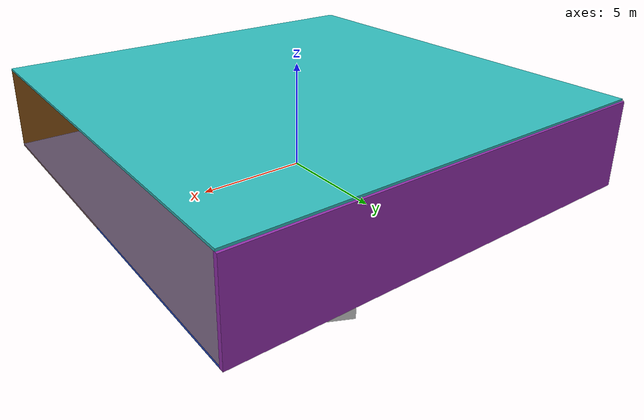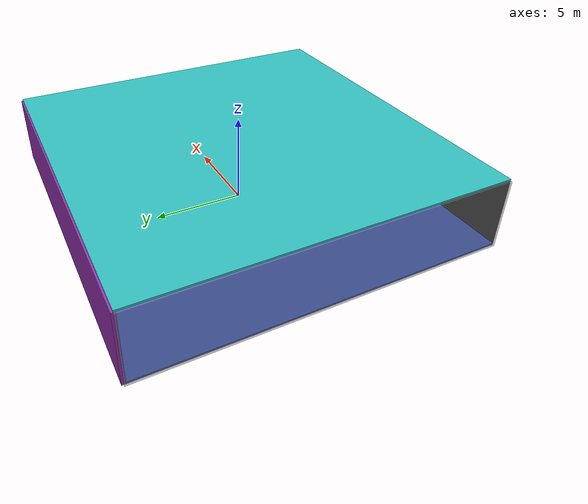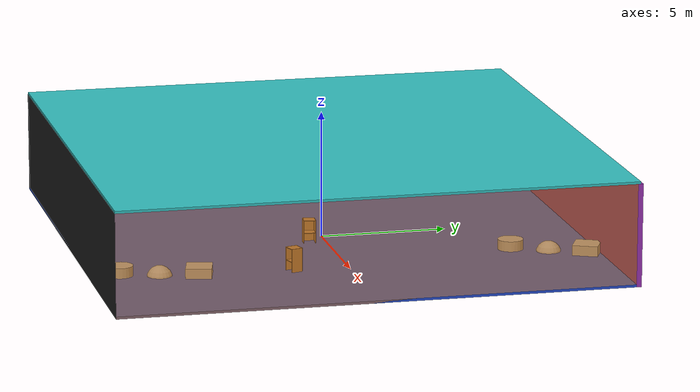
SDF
<sdf version="1.4">
 <world name="default">
  <physics type="ode">
   <max_step_size>0.001</max_step_size>
   <real_time_factor>1</real_time_factor>
   <real_time_update_rate>1000</real_time_update_rate>
   <gravity>0 0 -9.8</gravity>
  </physics>
  <scene><ambient>0.4 0.4 0.4 1</ambient><background>0.7 0.7 0.7 1</background><shadows>1</shadows></scene>
  <model name="Surrounding">
   <static>1</static>
   <link name="Ceiling">
    <collision name="Ceiling_Collision"><geometry><box><size>20 20 0.1</size></box></geometry></collision>
    <visual name="Ceiling_Visual">
     <geometry><box><size>20 20 0.1</size></box></geometry>
     <material>
      <script>
       <uri>file://media/materials/scripts/gazebo.material</uri>
       <name>Gazebo/TurquoiseGlowOutline</name>
      </script>
     </material>
    </visual>
    <pose>0 0 4.05 0 0 0</pose>
   </link>
   <link name="Wall_South">
    <collision name="Wall_South_Collision">
     <geometry><box><size>20 0 4</size></box></geometry>
     <pose>0 0 2 0 -0 0</pose>
    </collision>
    <visual name="Wall_South_Visual">
     <pose>0 0 2 0 -0 0</pose>
     <geometry><box><size>20 0 4</size></box></geometry>
     <material>
      <script><uri>file://media/materials/scripts/gazebo.material</uri><name>Gazebo/Black</name></script>
     </material>
    </visual>
    <velocity_decay><linear>0</linear><angular>0</angular></velocity_decay>
    <pose>0 -10 0 0 -0 0</pose>
   </link>
   <link name="Wall_East">
    <collision name="Wall_21_Collision">
     <geometry><box><size>20 0 4</size></box></geometry>
     <pose>0 0 2 0 -0 0</pose>
    </collision>
    <visual name="Wall_21_Visual">
     <pose>0 0 2 0 -0 0</pose>
     <geometry><box><size>20 0 4</size></box></geometry>
     <material>
      <script>
       <uri>file://media/materials/scripts/gazebo.material</uri>
       <name>Gazebo/OrangeTransparent</name>
      </script>
     </material>
    </visual>
    <velocity_decay><linear>0</linear><angular>0</angular></velocity_decay>
    <pose>10 0 0 0 -0 1.5708</pose>
   </link>
   <link name="Wall_North">
    <collision name="Wall_22_Collision">
     <geometry><box><size>20 0.2 4</size></box></geometry>
     <pose>0 0 2 0 -0 0</pose>
    </collision>
    <visual name="Wall_22_Visual">
     <pose>0 0 2 0 -0 0</pose>
     <geometry><box><size>20 0.2 4</size></box></geometry>
     <material>
      <script><uri>file://media/materials/scripts/gazebo.material</uri><name>Gazebo/Purple</name></script>
     </material>
    </visual>
    <velocity_decay><linear>0</linear><angular>0</angular></velocity_decay>
    <pose>0 10 0 0 -0 0</pose>
   </link>
   <link name="Wall_West">
    <collision name="Wall_23_Collision">
     <geometry><box><size>20 0.2 4</size></box></geometry>
     <pose>0 0 2 0 -0 0</pose>
    </collision>
    <visual name="Wall_23_Visual">
     <pose>0 0 2 0 -0 0</pose>
     <geometry><box><size>20 0.2 4</size></box></geometry>
     <material>
      <script><uri>file://media/materials/scripts/gazebo.material</uri><name>Gazebo/GreyTransparent</name></script>
     </material>
    </visual>
    <velocity_decay><linear>0</linear><angular>0</angular></velocity_decay>
    <pose>-10 0 0 0 0 -1.5708</pose>
   </link>
   <link name="Ground_link">
    <collision name="collision">
     <pose>0 0 .05 0 -0 0</pose>
     <geometry><box><size>20 20 0.1</size></box></geometry>
    </collision>
    <visual name="visual">
     <pose>0 0 .05 0 -0 0</pose>
     <geometry><box><size>20 20 0.1</size></box></geometry>
     <material>
      <script><uri>file://media/materials/scripts/gazebo.material</uri><name>Gazebo/BlueLaser</name></script>
     </material>
    </visual>
   </link>
   <static>1</static>
  </model>
  <spherical_coordinates>
   <surface_model>EARTH_WGS84</surface_model>
   <latitude_deg>0</latitude_deg>
   <longitude_deg>0</longitude_deg>
   <elevation>0</elevation>
   <heading_deg>0</heading_deg>
  </spherical_coordinates>
  <light name="lightball_0" type="diffuse">
   <diffuse>0.8 0.8 0.8 1</diffuse>
   <specular>0.2 0.2 0.2 1</specular>
   <attenuation>
    <range>100</range>
    <constant>0.7</constant>
    <linear>0.01</linear>
    <quadratic>0.001</quadratic>
   </attenuation>
   <direction>-0.5 0.1 -0.9</direction>
   <pose>-4.76605477982 -6.70420928728 2.97337040405 0 0 0</pose>
  </light>
  <light name="lightball_1" type="diffuse">
   <diffuse>0.8 0.8 0.8 1</diffuse>
   <specular>0.2 0.2 0.2 1</specular>
   <attenuation>
    <range>100</range>
    <constant>0.7</constant>
    <linear>0.01</linear>
    <quadratic>0.001</quadratic>
   </attenuation>
   <direction>-0.5 0.1 -0.9</direction>
   <pose>-0.906925167164 -1.27723929855 3.61368373771 0 0 0</pose>
  </light>
  <light name="lightball_2" type="diffuse">
   <diffuse>0.8 0.8 0.8 1</diffuse>
   <specular>0.2 0.2 0.2 1</specular>
   <attenuation>
    <range>100</range>
    <constant>0.7</constant>
    <linear>0.01</linear>
    <quadratic>0.001</quadratic>
   </attenuation>
   <direction>-0.5 0.1 -0.9</direction>
   <pose>1.14703500751 0.833773572148 0.89856843917 0 0 0</pose>
  </light>
  <light name="lightball_3" type="diffuse">
   <diffuse>0.8 0.8 0.8 1</diffuse>
   <specular>0.2 0.2 0.2 1</specular>
   <attenuation>
    <range>100</range>
    <constant>0.7</constant>
    <linear>0.01</linear>
    <quadratic>0.001</quadratic>
   </attenuation>
   <direction>-0.5 0.1 -0.9</direction>
   <pose>-7.2959697139 8.63836198669 3.5586830079 0 0 0</pose>
  </light>
  <light name="lightball_4" type="diffuse">
   <diffuse>0.8 0.8 0.8 1</diffuse>
   <specular>0.2 0.2 0.2 1</specular>
   <attenuation>
    <range>100</range>
    <constant>0.7</constant>
    <linear>0.01</linear>
    <quadratic>0.001</quadratic>
   </attenuation>
   <direction>-0.5 0.1 -0.9</direction>
   <pose>9.42606806878 -6.25456566483 3.42154460722 0 0 0</pose>
  </light>
  <light name="lightball_5" type="diffuse">
   <diffuse>0.8 0.8 0.8 1</diffuse>
   <specular>0.2 0.2 0.2 1</specular>
   <attenuation>
    <range>100</range>
    <constant>0.7</constant>
    <linear>0.01</linear>
    <quadratic>0.001</quadratic>
   </attenuation>
   <direction>-0.5 0.1 -0.9</direction>
   <pose>8.71533604437 -1.53210562221 3.54173718292 0 0 0</pose>
  </light>
  <light name="lightball_6" type="diffuse">
   <diffuse>0.8 0.8 0.8 1</diffuse>
   <specular>0.2 0.2 0.2 1</specular>
   <attenuation>
    <range>100</range>
    <constant>0.7</constant>
    <linear>0.01</linear>
    <quadratic>0.001</quadratic>
   </attenuation>
   <direction>-0.5 0.1 -0.9</direction>
   <pose>0.736582227422 -9.87850562274 1.49934754889 0 0 0</pose>
  </light>
  <light name="lightball_7" type="diffuse">
   <diffuse>0.8 0.8 0.8 1</diffuse>
   <specular>0.2 0.2 0.2 1</specular>
   <attenuation>
    <range>100</range>
    <constant>0.7</constant>
    <linear>0.01</linear>
    <quadratic>0.001</quadratic>
   </attenuation>
   <direction>-0.5 0.1 -0.9</direction>
   <pose>5.76506087751 6.04074601364 2.11993441041 0 0 0</pose>
  </light>
  <light name="lightball_8" type="diffuse">
   <diffuse>0.8 0.8 0.8 1</diffuse>
   <specular>0.2 0.2 0.2 1</specular>
   <attenuation>
    <range>100</range>
    <constant>0.7</constant>
    <linear>0.01</linear>
    <quadratic>0.001</quadratic>
   </attenuation>
   <direction>-0.5 0.1 -0.9</direction>
   <pose>-5.15584736015 -1.50501512619 1.78321100171 0 0 0</pose>
  </light>
  <light name="lightball_9" type="diffuse">
   <diffuse>0.8 0.8 0.8 1</diffuse>
   <specular>0.2 0.2 0.2 1</specular>
   <attenuation>
    <range>100</range>
    <constant>0.7</constant>
    <linear>0.01</linear>
    <quadratic>0.001</quadratic>
   </attenuation>
   <direction>-0.5 0.1 -0.9</direction>
   <pose>6.60337786195 -0.226477462269 1.06887830979 0 0 0</pose>
  </light>
  <light name="lightball_10" type="diffuse">
   <diffuse>0.8 0.8 0.8 1</diffuse>
   <specular>0.2 0.2 0.2 1</specular>
   <attenuation>
    <range>100</range>
    <constant>0.7</constant>
    <linear>0.01</linear>
    <quadratic>0.001</quadratic>
   </attenuation>
   <direction>-0.5 0.1 -0.9</direction>
   <pose>-9.57188969656 2.64080593019 2.63996879483 0 0 0</pose>
  </light>
  <light name="lightball_11" type="diffuse">
   <diffuse>0.8 0.8 0.8 1</diffuse>
   <specular>0.2 0.2 0.2 1</specular>
   <attenuation>
    <range>100</range>
    <constant>0.7</constant>
    <linear>0.01</linear>
    <quadratic>0.001</quadratic>
   </attenuation>
   <direction>-0.5 0.1 -0.9</direction>
   <pose>4.85597058244 -5.22327542833 2.60418598513 0 0 0</pose>
  </light>
  <include><uri>model://cabinet</uri><pose>1.1202591802 -0.744091429107 0 0 0 3.064555438</pose></include>
  <include>
   <uri>model://textured_shapes</uri>
   <pose>4.72160905972 -7.36824067488 0 0 0 2.90034340358</pose>
  </include>
  <include><uri>model://cabinet</uri><pose>5.16201195913 -2.24193141824 0 0 0 1.85891115261</pose></include>
  <include>
   <uri>model://textured_shapes</uri>
   <pose>4.49820157478 8.01710551321 0 0 0 2.70105421366</pose>
  </include>
 </world>
</sdf>

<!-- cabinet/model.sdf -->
<sdf version="1.5">
  <model name="cabinet">
    <static>true</static>
    <link name="cabinet_bottom_plate">
      <inertial>
        <pose>0 0 -1 0 0 0</pose>
        <inertia>
          <ixx>2.050000</ixx>
          <ixy>0</ixy>
          <ixz>0</ixz>
          <iyy>2.050000</iyy>
          <iyz>0</iyz>
          <izz>2.050000</izz>
        </inertia>
        <mass>25.000000</mass>
      </inertial>
      <collision name="cabinet_bottom_plate_geom">
        <pose>0 0 0.010000 0 0 0</pose>
        <geometry>
          <box>
            <size>0.450000 0.450000 0.020000</size>
          </box>
        </geometry>
      </collision>
      <visual name="cabinet_bottom_plate_geom_visual">
        <pose>0 0 0.010000 0 0 0</pose>
        <geometry>
          <box>
            <size>0.450000 0.450000 0.020000</size>
          </box>
        </geometry>
        <material>
          <script>
            <uri>model://media/materials/scripts/gazebo.material</uri>
            <name>Gazebo/Wood</name>
          </script>
        </material>
      </visual>
      <collision name="cabinet_bottom_plate_geom_cabinet_back_plate">
        <pose>0.235000 0 0.510000 0 0 0</pose>
        <geometry>
          <box>
            <size>0.020000 0.450000 1.020000</size>
          </box>
        </geometry>
      </collision>
      <visual name="cabinet_bottom_plate_geom_cabinet_back_plate_visual">
        <pose>0.235000 0 0.510000 0 0 0</pose>
        <geometry>
          <box>
            <size>0.020000 0.450000 1.020000</size>
          </box>
        </geometry>
        <material>
          <script>
            <uri>model://media/materials/scripts/gazebo.material</uri>
            <name>Gazebo/Wood</name>
          </script>
        </material>
      </visual>
      <collision name="cabinet_bottom_plate_geom_cabinet_left_plate">
        <pose>0 0.235000 0.510000 0 0 0</pose>
        <geometry>
          <box>
            <size>0.450000 0.020000 1.020000</size>
          </box>
        </geometry>
      </collision>
      <visual name="cabinet_bottom_plate_geom_cabinet_left_plate_visual">
        <pose>0 0.235000 0.510000 0 0 0</pose>
        <geometry>
          <box>
            <size>0.450000 0.020000 1.020000</size>
          </box>
        </geometry>
        <material>
          <script>
            <uri>model://media/materials/scripts/gazebo.material</uri>
            <name>Gazebo/Wood</name>
          </script>
        </material>
      </visual>
      <collision name="cabinet_bottom_plate_geom_cabinet_middle_plate">
        <pose>0 0 0.510000 0 0 0</pose>
        <geometry>
          <box>
            <size>0.450000 0.450000 0.020000</size>
          </box>
        </geometry>
      </collision>
      <visual name="cabinet_bottom_plate_geom_cabinet_middle_plate_visual">
        <pose>0 0 0.510000 0 0 0</pose>
        <geometry>
          <box>
            <size>0.450000 0.450000 0.020000</size>
          </box>
        </geometry>
        <material>
          <script>
            <uri>model://media/materials/scripts/gazebo.material</uri>
            <name>Gazebo/Wood</name>
          </script>
        </material>
      </visual>
      <collision name="cabinet_bottom_plate_geom_cabinet_right_plate">
        <pose>0 -0.235000 0.510000 0 0 0</pose>
        <geometry>
          <box>
            <size>0.450000 0.020000 1.020000</size>
          </box>
        </geometry>
      </collision>
      <visual name="cabinet_bottom_plate_geom_cabinet_right_plate_visual">
        <pose>0 -0.235000 0.510000 0 0 0</pose>
        <geometry>
          <box>
            <size>0.450000 0.020000 1.020000</size>
          </box>
        </geometry>
        <material>
          <script>
            <uri>model://media/materials/scripts/gazebo.material</uri>
            <name>Gazebo/Wood</name>
          </script>
        </material>
      </visual>
      <collision name="cabinet_bottom_plate_geom_cabinet_top_plate">
        <pose>0 0 1.010000 0 0 0</pose>
        <geometry>
          <box>
            <size>0.450000 0.450000 0.020000</size>
          </box>
        </geometry>
      </collision>
      <visual name="cabinet_bottom_plate_geom_cabinet_top_plate_visual">
        <pose>0 0 1.010000 0 0 0</pose>
        <geometry>
          <box>
            <size>0.450000 0.450000 0.020000</size>
          </box>
        </geometry>
        <material>
          <script>
            <uri>model://media/materials/scripts/gazebo.material</uri>
            <name>Gazebo/Wood</name>
          </script>
        </material>
      </visual>
    </link>
  </model>
</sdf>

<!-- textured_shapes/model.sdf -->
<sdf version="1.6">
  <model name="textured_shapes">
    <pose>0 0 0.5 0 0 0</pose>
    <link name="box">
      <pose>0 -1.5 0 0 0 0</pose>
      <collision name="collision">
        <geometry>
          <box>
            <size>1 1 1</size>
          </box>
        </geometry>
      </collision>
      <visual name="visual">
        <geometry>
          <box>
            <size>1 1 1</size>
          </box>
        </geometry>
        <material>
          <script>
            <uri>model://../model_source/models/textured_shapes/materials/scripts</uri>
            <uri>model://../model_source/models/textured_shapes/materials/textures</uri>
            <name>TexturedShape/Squares</name>
          </script>
        </material>
      </visual>
    </link>
    <link name="sphere">
      <collision name="collision">
        <geometry>
          <sphere>
            <radius>0.5</radius>
          </sphere>
        </geometry>
      </collision>
      <visual name="visual">
        <geometry>
          <sphere>
            <radius>0.5</radius>
          </sphere>
        </geometry>
        <material>
          <script>
            <uri>model://../model_source/models/textured_shapes/materials/scripts</uri>
            <uri>model://../model_source/models/textured_shapes/materials/textures</uri>
            <name>TexturedShape/Squares</name>
          </script>
        </material>
      </visual>
    </link>
    <link name="cylinder">
      <pose>0 1.5 0 0 0 0</pose>
      <collision name="collision">
        <geometry>
          <cylinder>
            <radius>0.5</radius>
            <length>1</length>
          </cylinder>
        </geometry>
      </collision>
      <visual name="visual">
        <geometry>
          <cylinder>
            <radius>0.5</radius>
            <length>1</length>
          </cylinder>
        </geometry>
        <material>
          <script>
            <uri>model://../model_source/models/textured_shapes/materials/scripts</uri>
            <uri>model://../model_source/models/textured_shapes/materials/textures</uri>
            <name>TexturedShape/Squares</name>
          </script>
        </material>
      </visual>
    </link>
  </model>
</sdf>
